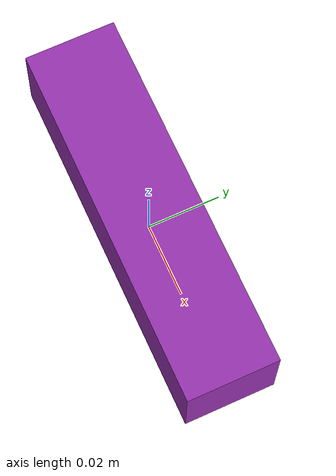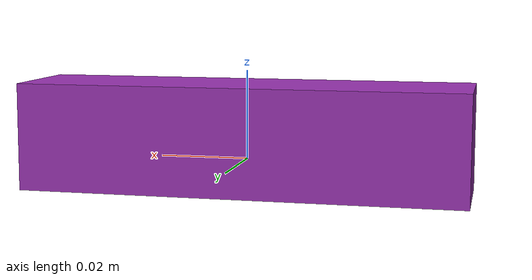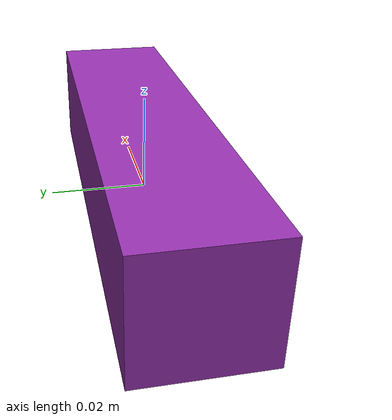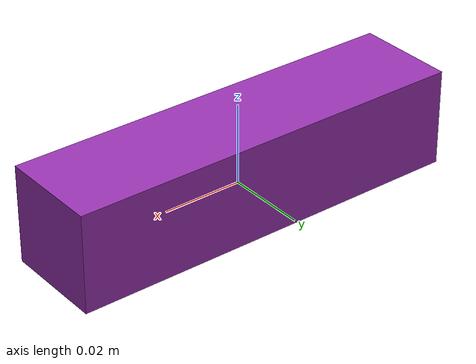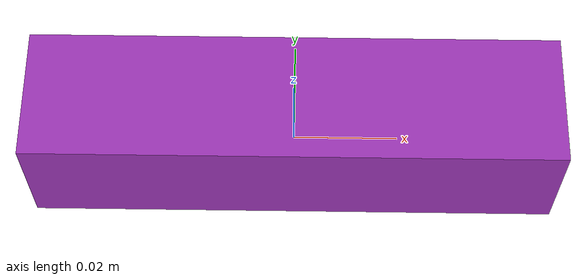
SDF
<?xml version="1.0"?>
<sdf version="1.7">
  <model name="stone_10_2_5_1cm">
    <link name="link">
      <pose>-0 -0 0.005 0 -0 0</pose>
      <inertial>
        <mass>0.152068</mass>
        <inertia>
          <ixx>1.53283e-05</ixx>
          <ixy>0</ixy>
          <ixz>0</ixz>
          <iyy>0.000134131</iyy>
          <iyz>0</iyz>
          <izz>0.000134643</izz>
        </inertia>
        <pose>0 0 0 0 -0 0</pose>
      </inertial>
      <self_collide>0</self_collide>
      <enable_wind>0</enable_wind>
      <kinematic>0</kinematic>
      <visual name="visual">
        <geometry>
          <box>
            <size>0.1 0.025 0.024178</size>
          </box>
        </geometry>
        <material>
          <script>
            <uri>file://media/materials/scripts/gazebo.material</uri>
            <name>Gazebo/Purple</name>
          </script>
          <shader type="pixel"/>
        </material>
        <pose>0 0 0 0 -0 0</pose>
        <transparency>0</transparency>
        <cast_shadows>1</cast_shadows>
      </visual>
      <collision name="collision">
        <laser_retro>0</laser_retro>
        <max_contacts>10</max_contacts>
        <pose>0 0 0 0 -0 0</pose>
        <geometry>
          <box>
            <size>0.1 0.025 0.024178</size>
          </box>
        </geometry>
        <surface>
          <friction>
            <ode>
              <mu>100</mu>
              <mu2>50</mu2>
              <fdir1>0 0 0</fdir1>
              <slip1>0</slip1>
              <slip2>0</slip2>
            </ode>
            <torsional>
              <coefficient>1</coefficient>
              <patch_radius>0</patch_radius>
              <surface_radius>0.01</surface_radius>
              <use_patch_radius>0</use_patch_radius>
              <ode>
                <slip>0</slip>
              </ode>
            </torsional>
          </friction>
          <bounce>
            <restitution_coefficient>0</restitution_coefficient>
            <threshold>1e+06</threshold>
          </bounce>
          <contact>
            <collide_without_contact>0</collide_without_contact>
            <collide_without_contact_bitmask>1</collide_without_contact_bitmask>
            <collide_bitmask>1</collide_bitmask>
            <ode>
              <soft_cfm>0</soft_cfm>
              <soft_erp>0.2</soft_erp>
              <kp>100000</kp>
              <kd>100</kd>
              <max_vel>100</max_vel>
              <min_depth>0.001</min_depth>
            </ode>
            <bullet>
              <split_impulse>1</split_impulse>
              <split_impulse_penetration_threshold>-0.01</split_impulse_penetration_threshold>
              <soft_cfm>0</soft_cfm>
              <soft_erp>0.2</soft_erp>
              <kp>100000</kp>
              <kd>100</kd>
            </bullet>
          </contact>
        </surface>
      </collision>
    </link>
    <static>0</static>
    <allow_auto_disable>1</allow_auto_disable>
  </model>
</sdf>
